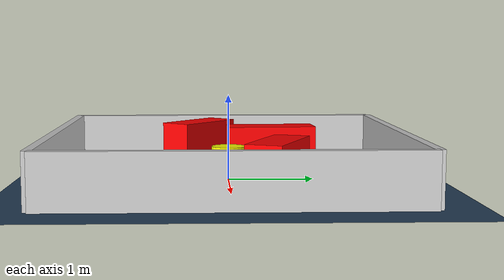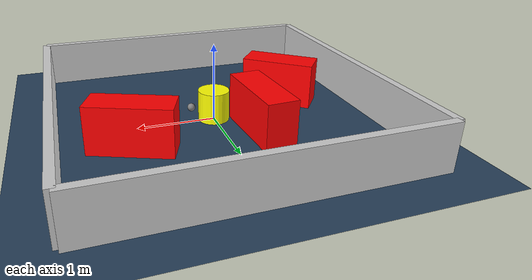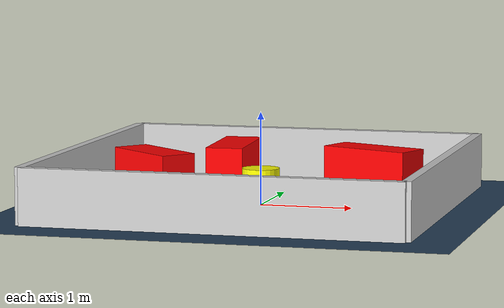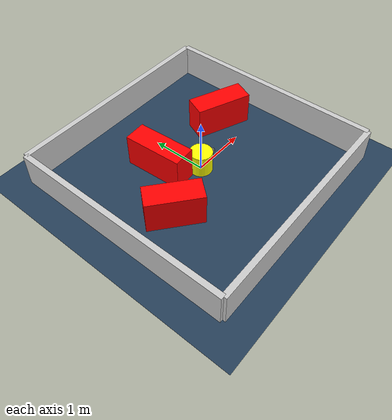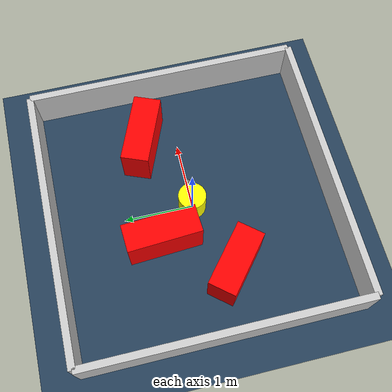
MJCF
<?xml version="1.0" ?>
<mujoco model="generated_environment">
  <option timestep="0.01" integrator="RK4" cone="elliptic"/>
  <default>
    <geom density="1"/>
  </default>
  <asset>
    <texture builtin="gradient" height="3072" rgb1="0.3 0.5 0.7" rgb2="0 0 0" type="skybox" width="512"/>
    <texture builtin="checker" height="300" mark="edge" markrgb="0.8 0.8 0.8" name="groundplane" rgb1="0.2 0.3 0.4" rgb2="0.1 0.2 0.3" type="2d" width="300"/>
    <material name="groundplane" reflectance="0.2" texrepeat="5 5" texture="groundplane" texuniform="true"/>
    <material name="robot" rgba="0.0 1.0 0.0 1"/>
  </asset>
  <worldbody>
    <light dir="0 0 -1" directional="true" pos="0 0 1.5"/>
    <geom condim="4" friction="1.0 0.005 0.001" material="groundplane" name="floor" size="0 0 0.05" type="plane"/>
    <body name="walls">
      <geom name="wall_1" condim="4" pos="-2.0 0.0 0.3" rgba="0.800000011920929 0.800000011920929 0.800000011920929 1.0" size="0.05 2.0 0.3" type="box"/>
      <geom name="wall_2" condim="4" pos="2.0 0.0 0.3" rgba="0.800000011920929 0.800000011920929 0.800000011920929 1.0" size="0.05 2.0 0.3" type="box"/>
      <geom name="wall_3" condim="4" pos="0.0 -2.0 0.3" rgba="0.800000011920929 0.800000011920929 0.800000011920929 1.0" size="2.0 0.05 0.3" type="box"/>
      <geom name="wall_4" condim="4" pos="0.0 2.0 0.3" rgba="0.800000011920929 0.800000011920929 0.800000011920929 1.0" size="2.0 0.05 0.3" type="box"/>
    </body>
    <body name="robot">
      <joint name="joint_x" type="slide" pos="0 0 0" axis="1 0 0"/>
      <joint name="joint_y" type="slide" pos="0 0 0" axis="0 1 0"/>
      <geom name="robot" type="sphere" pos="0.3 0.0 0.2" size="0.05" mass="5." friction="1.0 0.005 0.0001" condim="4" rgba="0.5 0.5 0.5 1.0"/>
      <site name="sensor_ball"/>
    </body>
    <body name="obstacle_movable_1">
      <geom name="obstacle_movable_1" condim="4" pos="0.0 0.0 0.2" euler="0 0 0.0" friction="1.0 0.005 0.001" rgba="1.0 1.0 0.0 1.0" size="0.2 0.2 0.0" type="cylinder" mass="0.1"/>
      <joint type="free"/>
    </body>
    <body name="obstacle_2_static">
      <geom name="obstacle_2_static" condim="4" pos="-1.0875223966034795 -0.3482532713765001 0.3" euler="0 0 320.3517199694869" friction="1.0 0.005 0.001" rgba="1 0 0 1" size="0.4748018876975699 0.2 0.3" type="box"/>
    </body>
    <body name="obstacle_3_static">
      <geom name="obstacle_3_static" condim="4" pos="-0.4455415866365271 0.5302658224304462 0.3" euler="0 0 273.44098736966737" friction="1.0 0.005 0.001" rgba="1 0 0 1" size="0.528437599741157 0.2 0.3" type="box"/>
    </body>
    <body name="obstacle_4_static">
      <geom name="obstacle_4_static" condim="4" pos="1.1282105482238105 0.4940464808637437 0.3" euler="0 0 157.66219037461377" friction="1.0 0.005 0.001" rgba="1 0 0 1" size="0.5114275705354969 0.2 0.3" type="box"/>
    </body>
  </worldbody>
  <actuator>
    <motor name="actuator_x" joint="joint_x" gear="1" ctrlrange="-1 1"/>
    <motor name="actuator_y" joint="joint_y" gear="1" ctrlrange="-1 1"/>
  </actuator>
</mujoco>
